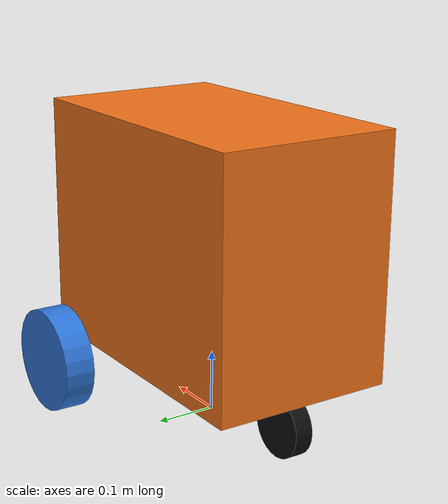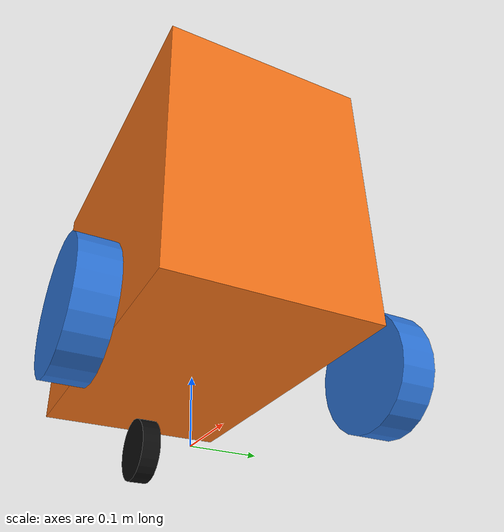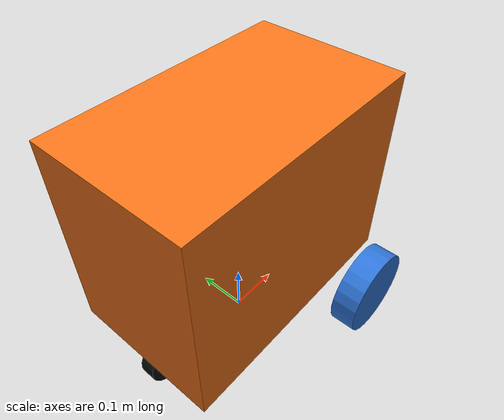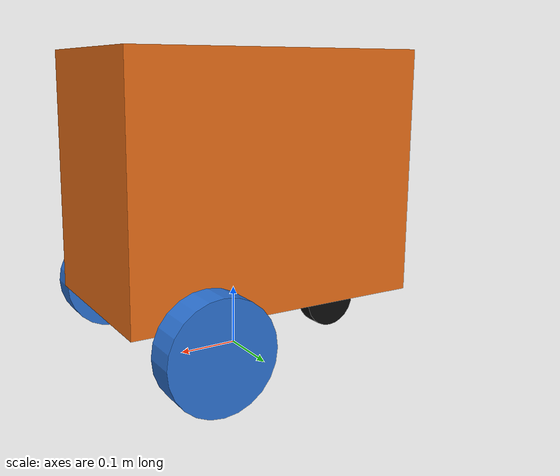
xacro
<?xml version="1.0"?>
<robot name="botwheel_explorer" xmlns:xacro="http://ros.org/wiki/xacro">

  <!-- ===== Properties ===== -->

  <!-- Chassis (= base_link). 上面が地上 0.50m に来るように厚み 0.40m とする。 -->
  <xacro:property name="base_length" value="0.50" />
  <xacro:property name="base_width"  value="0.30" />
  <xacro:property name="base_height" value="0.40" />
  <xacro:property name="base_mass"   value="20.0" />  <!-- 公称 ~20kg (バッテリ+コンピュータ込み) -->

  <!-- Drive wheels (BotWheel hub motor) -->
  <xacro:property name="wheel_radius" value="0.0855" />
  <xacro:property name="wheel_width"  value="0.05" />
  <xacro:property name="wheel_pos_x"  value="0.15" />
  <xacro:property name="wheel_pos_y"  value="0.2095" />  <!-- track 0.419 / 2 -->
  <!-- chassis 中心 (地上 0.300m) から wheel 軸 (地上 0.0855m) へのオフセット -->
  <xacro:property name="wheel_pos_z"  value="-0.2145" />
  <xacro:property name="wheel_mass"   value="1.0" />

  <xacro:property name="caster_wheel_radius" value="0.050" />
  <xacro:property name="caster_wheel_width"  value="0.030" />
  <xacro:property name="caster_wheel_mass"   value="0.30" />
  <xacro:property name="caster_swivel_mass"  value="0.10" />
  <xacro:property name="caster_trail"        value="0.030" />  <!-- 旋回軸 → 車軸 x オフセット (後方) -->

  <!-- swivel 軸は chassis 底面 (地上 0.100m) のリア寄りに取り付ける。
       chassis 後端から内側に caster_trail + caster_wheel_radius 入った位置で
       車輪が chassis 後端より内側に収まる配置。 -->
  <xacro:property name="caster_swivel_inset" value="${caster_trail + caster_wheel_radius}" />
  <xacro:property name="caster_rear_x"  value="${-(base_length / 2) + caster_swivel_inset}" />
  <!-- swivel 軸の base_link 中心からの z オフセット = -base_height/2 (chassis 底面, 地上 0.100m) -->
  <xacro:property name="caster_swivel_z" value="${-base_height/2}" />
  <xacro:property name="caster_wheel_dz" value="${caster_wheel_radius - (wheel_radius - wheel_pos_z - base_height/2)}" />

  <!-- ===== Materials ===== -->
  <material name="bw_orange"><color rgba="0.95 0.45 0.10 1.0"/></material>
  <material name="bw_blue">  <color rgba="0.18 0.46 0.85 1.0"/></material>
  <material name="bw_black"> <color rgba="0.05 0.05 0.05 1.0"/></material>

  <!-- ===== base_footprint / base_link (chassis) ===== -->

  <link name="base_footprint"/>

  <link name="base_link">
    <visual>
      <origin xyz="0 0 0" rpy="0 0 0"/>
      <geometry>
        <box size="${base_length} ${base_width} ${base_height}"/>
      </geometry>
      <material name="bw_orange"/>
    </visual>
    <collision>
      <origin xyz="0 0 0" rpy="0 0 0"/>
      <geometry>
        <box size="${base_length} ${base_width} ${base_height}"/>
      </geometry>
    </collision>
    <inertial>
      <origin xyz="0 0 0" rpy="0 0 0"/>
      <mass value="${base_mass}"/>
      <inertia
        ixx="${(1.0/12.0) * base_mass * (base_width*base_width  + base_height*base_height)}" ixy="0.0" ixz="0.0"
        iyy="${(1.0/12.0) * base_mass * (base_length*base_length + base_height*base_height)}" iyz="0.0"
        izz="${(1.0/12.0) * base_mass * (base_length*base_length + base_width*base_width)}"/>
    </inertial>
  </link>

  <joint name="base_to_footprint" type="fixed">
    <parent link="base_footprint"/>
    <child  link="base_link"/>
    <origin xyz="0 0 ${wheel_radius - wheel_pos_z}" rpy="0 0 0"/>
  </joint>

  <!-- ===== Drive wheels ===== -->

  <xacro:macro name="bw_wheel" params="side y_sign">
    <link name="${side}_wheel_link">
      <visual>
        <origin xyz="0 0 0" rpy="${pi/2} 0 0"/>
        <geometry>
          <cylinder radius="${wheel_radius}" length="${wheel_width}"/>
        </geometry>
        <material name="bw_blue"/>
      </visual>
      <collision>
        <origin xyz="0 0 0" rpy="${pi/2} 0 0"/>
        <geometry>
          <cylinder radius="${wheel_radius}" length="${wheel_width}"/>
        </geometry>
      </collision>
      <inertial>
        <origin xyz="0 0 0" rpy="0 0 0"/>
        <mass value="${wheel_mass}"/>
        <inertia
          ixx="${(1.0/12.0) * wheel_mass * (3*wheel_radius*wheel_radius + wheel_width*wheel_width)}" ixy="0" ixz="0"
          iyy="${(1.0/12.0) * wheel_mass * (3*wheel_radius*wheel_radius + wheel_width*wheel_width)}" iyz="0"
          izz="${(1.0/2.0)  * wheel_mass * (wheel_radius*wheel_radius)}"/>
      </inertial>
    </link>
    <joint name="${side}_wheel_joint" type="continuous">
      <parent link="base_link"/>
      <child  link="${side}_wheel_link"/>
      <origin xyz="${wheel_pos_x} ${y_sign * wheel_pos_y} ${wheel_pos_z}" rpy="0 0 0"/>
      <axis xyz="0 1 0"/>
      <dynamics damping="0.2"/>
      <limit effort="20" velocity="3.0"/>
    </joint>
  </xacro:macro>

  <xacro:bw_wheel side="left"  y_sign="1"/>
  <xacro:bw_wheel side="right" y_sign="-1"/>

  <!-- ===== Caster wheels (front / rear) ===== -->

  <xacro:macro name="bw_caster" params="side pos_x">
    <!-- (1) swivel link : base_link に対し z 軸まわりに回転する小さなフォーク -->
    <link name="${side}_caster_swivel_link">
      <visual>
        <!-- フォークを可視化するための細い縦長 box (機能なし、ただの目印) -->
        <origin xyz="0 0 ${-(base_height/2 - (wheel_radius - wheel_pos_z) - caster_wheel_radius)/2}" rpy="0 0 0"/>
        <geometry>
          <box size="0.020 0.020 ${(wheel_radius - wheel_pos_z - base_height/2) - caster_wheel_radius}"/>
        </geometry>
        <material name="bw_black"/>
      </visual>
      <inertial>
        <origin xyz="0 0 0" rpy="0 0 0"/>
        <mass value="${caster_swivel_mass}"/>
        <inertia ixx="1.0e-5" ixy="0" ixz="0" iyy="1.0e-5" iyz="0" izz="1.0e-5"/>
      </inertial>
    </link>
    <joint name="${side}_caster_swivel_joint" type="continuous">
      <parent link="base_link"/>
      <child  link="${side}_caster_swivel_link"/>
      <origin xyz="${pos_x} 0 ${caster_swivel_z}" rpy="0 0 0"/>
      <axis xyz="0 0 1"/>
      <dynamics damping="0.05"/>
    </joint>

    <!-- (2) wheel link : swivel フォークの先で y 軸まわりに転がる小型シリンダ -->
    <link name="${side}_caster_wheel_link">
      <visual>
        <origin xyz="0 0 0" rpy="${pi/2} 0 0"/>
        <geometry>
          <cylinder radius="${caster_wheel_radius}" length="${caster_wheel_width}"/>
        </geometry>
        <material name="bw_black"/>
      </visual>
      <collision>
        <origin xyz="0 0 0" rpy="${pi/2} 0 0"/>
        <geometry>
          <cylinder radius="${caster_wheel_radius}" length="${caster_wheel_width}"/>
        </geometry>
      </collision>
      <inertial>
        <origin xyz="0 0 0" rpy="0 0 0"/>
        <mass value="${caster_wheel_mass}"/>
        <inertia
          ixx="${(1.0/12.0) * caster_wheel_mass * (3*caster_wheel_radius*caster_wheel_radius + caster_wheel_width*caster_wheel_width)}" ixy="0" ixz="0"
          iyy="${(1.0/12.0) * caster_wheel_mass * (3*caster_wheel_radius*caster_wheel_radius + caster_wheel_width*caster_wheel_width)}" iyz="0"
          izz="${(1.0/2.0)  * caster_wheel_mass * (caster_wheel_radius*caster_wheel_radius)}"/>
      </inertial>
    </link>
    <joint name="${side}_caster_wheel_joint" type="continuous">
      <parent link="${side}_caster_swivel_link"/>
      <child  link="${side}_caster_wheel_link"/>
      <!-- swivel 軸から trail だけ後方 (= -x 方向) に車軸を取り付ける -->
      <origin xyz="${-caster_trail} 0 ${caster_wheel_dz}" rpy="0 0 0"/>
      <axis xyz="0 1 0"/>
      <dynamics damping="0.02"/>
    </joint>
  </xacro:macro>

  <xacro:bw_caster side="rear"  pos_x="${caster_rear_x}"/>

</robot>
